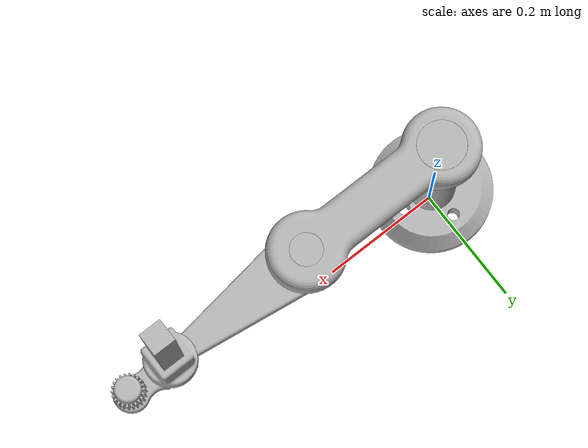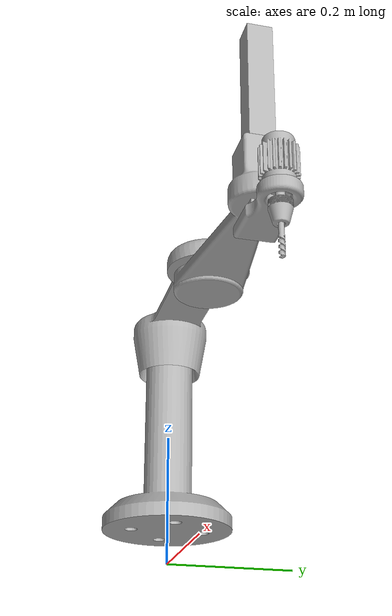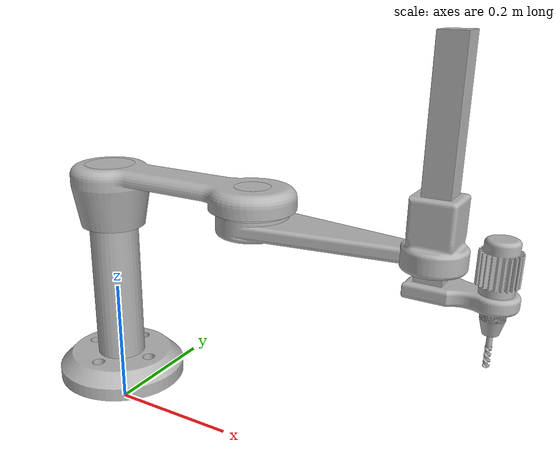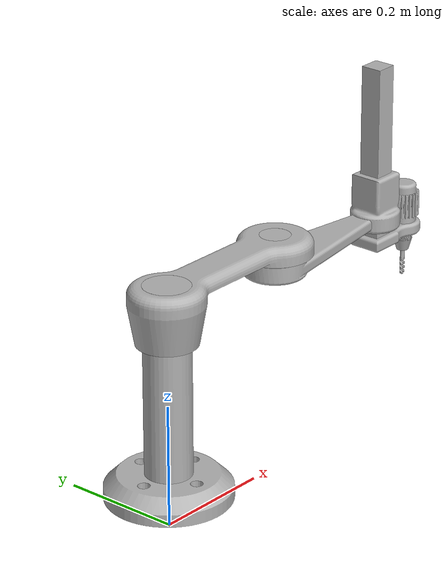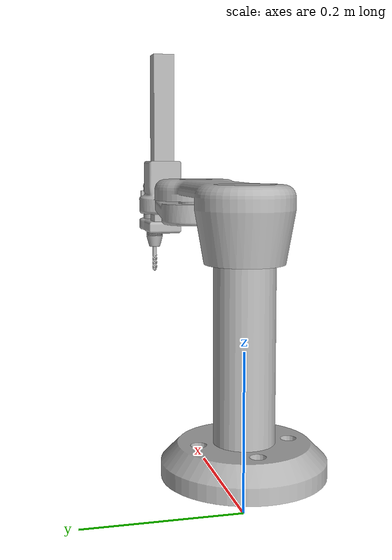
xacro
<?xml version="1.0" ?>
<robot name="scara" xmlns:xacro="http://www.ros.org/wiki/xacro">

<xacro:include filename="$(find scara_description)/urdf/materials.xacro" />
<xacro:include filename="$(find scara_description)/urdf/scara.trans" />

<xacro:include filename="$(find scara_description)/urdf/gazebo/scara_plugins.gazebo" />
<xacro:include filename="$(find scara_description)/urdf/gazebo/scara_materials.gazebo" />
<xacro:include filename="$(find scara_description)/urdf/gazebo/scara_physics.gazebo" />

<link name="world"/>
  <joint name="base_joint" type="fixed">
    <parent link="world"/>
    <child link="base_link"/>
    <origin rpy="0 0 0" xyz="0.0 0.0 0.05"/>
  </joint>

<link name="base_link">
  <inertial>
    <origin xyz="0.0 0.0 0.11685065885797952" rpy="0 0 0"/>
    <mass value="19.300194480249786"/>
    <inertia ixx="0.259153" iyy="0.259153" izz="0.047533" ixy="0.0" iyz="0.0" ixz="0.0"/>
  </inertial>
  <visual>
    <origin xyz="0 0 0" rpy="0 0 0"/>
    <geometry>
      <mesh filename="package://scara_description/meshes/base_link.stl" scale="0.001 0.001 0.001"/>
    </geometry>
    <material name="silver"/>
  </visual>
  <collision>
    <origin xyz="0 0 0" rpy="0 0 0"/>
    <geometry>
      <mesh filename="package://scara_description/meshes/base_link.stl" scale="0.001 0.001 0.001"/>
    </geometry>
  </collision>
</link>

<link name="shoulder_link_1">
  <inertial>
    <origin xyz="0.10406729162358057 -1.3891110484109959e-14 -0.023501440517303518" rpy="0 0 0"/>
    <mass value="6.854555767942093"/>
    <inertia ixx="0.009222" iyy="0.090745" izz="0.094968" ixy="-0.0" iyz="-0.0" ixz="-0.006604"/>
  </inertial>
  <visual>
    <origin xyz="-0.0 -0.0 -0.35" rpy="0 0 0"/>
    <geometry>
      <mesh filename="package://scara_description/meshes/shoulder_link_1.stl" scale="0.001 0.001 0.001"/>
    </geometry>
    <material name="silver"/>
  </visual>
  <collision>
    <origin xyz="-0.0 -0.0 -0.35" rpy="0 0 0"/>
    <geometry>
      <mesh filename="package://scara_description/meshes/shoulder_link_1.stl" scale="0.001 0.001 0.001"/>
    </geometry>
  </collision>
</link>

<link name="elbow_link_1">
  <inertial>
    <origin xyz="0.10981624616210922 -6.3228217328514805e-09 -0.04001457655872265" rpy="0 0 0"/>
    <mass value="5.874767873320114"/>
    <inertia ixx="0.005118" iyy="0.072285" izz="0.07261" ixy="-0.0" iyz="-0.0" ixz="-0.00379"/>
  </inertial>
  <visual>
    <origin xyz="-0.25 -0.0 -0.35" rpy="0 0 0"/>
    <geometry>
      <mesh filename="package://scara_description/meshes/elbow_link_1.stl" scale="0.001 0.001 0.001"/>
    </geometry>
    <material name="silver"/>
  </visual>
  <collision>
    <origin xyz="-0.25 -0.0 -0.35" rpy="0 0 0"/>
    <geometry>
      <mesh filename="package://scara_description/meshes/elbow_link_1.stl" scale="0.001 0.001 0.001"/>
    </geometry>
  </collision>
</link>

<link name="wrist_link_1">
  <inertial>
    <origin xyz="-0.2750000000000256 0.16722200000002807 -0.17975880198197997" rpy="0 0 0"/>
    <mass value="2.8802120999999996"/>
    <inertia ixx="0.021827" iyy="0.021827" izz="0.000587" ixy="-0.0" iyz="0.0" ixz="0.0"/>
  </inertial>
  <visual>
    <origin xyz="-0.775 0.167222 -0.585" rpy="0 0 0"/>
    <geometry>
      <mesh filename="package://scara_description/meshes/wrist_link_1.stl" scale="0.001 0.001 0.001"/>
    </geometry>
    <material name="silver"/>
  </visual>
  <collision>
    <origin xyz="-0.775 0.167222 -0.585" rpy="0 0 0"/>
    <geometry>
      <mesh filename="package://scara_description/meshes/wrist_link_1.stl" scale="0.001 0.001 0.001"/>
    </geometry>
  </collision>
</link>

<link name="ee_link_1">
  <inertial>
    <origin xyz="0.03355560765510779 6.631408897561641e-08 0.00599099555139021" rpy="0 0 0"/>
    <mass value="0.6787662605990178"/>
    <inertia ixx="0.000199" iyy="0.000901" izz="0.001057" ixy="-0.0" iyz="0.0" ixz="-4e-06"/>
  </inertial>
  <visual>
    <origin xyz="-0.5 -0.0 -0.255" rpy="0 0 0"/>
    <geometry>
      <mesh filename="package://scara_description/meshes/ee_link_1.stl" scale="0.001 0.001 0.001"/>
    </geometry>
    <material name="silver"/>
  </visual>
  <collision>
    <origin xyz="-0.5 -0.0 -0.255" rpy="0 0 0"/>
    <geometry>
      <mesh filename="package://scara_description/meshes/ee_link_1.stl" scale="0.001 0.001 0.001"/>
    </geometry>
  </collision>
</link>

<link name="motor_link_1">
  <inertial>
    <origin xyz="-1.6228999255574195e-09 2.0707811870579462e-07 0.03391798119409134" rpy="0 0 0"/>
    <mass value="0.8066266647615069"/>
    <inertia ixx="0.000415" iyy="0.000415" izz="0.000189" ixy="-0.0" iyz="-0.0" ixz="0.0"/>
  </inertial>
  <visual>
    <origin xyz="-0.575 -0.0 -0.266576" rpy="0 0 0"/>
    <geometry>
      <mesh filename="package://scara_description/meshes/motor_link_1.stl" scale="0.001 0.001 0.001"/>
    </geometry>
    <material name="silver"/>
  </visual>
  <collision>
    <origin xyz="-0.575 -0.0 -0.266576" rpy="0 0 0"/>
    <geometry>
      <mesh filename="package://scara_description/meshes/motor_link_1.stl" scale="0.001 0.001 0.001"/>
    </geometry>
  </collision>
</link>

<link name="chuck_link_1">
  <inertial>
    <origin xyz="1.683823280806962e-08 -2.2235286252225704e-08 -0.011382325189040837" rpy="0 0 0"/>
    <mass value="0.12296942924536237"/>
    <inertia ixx="1.4e-05" iyy="1.4e-05" izz="1.2e-05" ixy="0.0" iyz="0.0" ixz="-0.0"/>
  </inertial>
  <visual>
    <origin xyz="-0.575 -0.0 -0.248576" rpy="0 0 0"/>
    <geometry>
      <mesh filename="package://scara_description/meshes/chuck_link_1.stl" scale="0.001 0.001 0.001"/>
    </geometry>
    <material name="silver"/>
  </visual>
  <collision>
    <origin xyz="-0.575 -0.0 -0.248576" rpy="0 0 0"/>
    <geometry>
      <mesh filename="package://scara_description/meshes/chuck_link_1.stl" scale="0.001 0.001 0.001"/>
    </geometry>
  </collision>
</link>

<link name="drill_link_1">
  <inertial>
    <origin xyz="1.2688239348079833e-10 2.089224615531293e-09 -0.025049374497440463" rpy="0 0 0"/>
    <mass value="0.014560180214849353"/>
    <inertia ixx="3e-06" iyy="3e-06" izz="0.0" ixy="0.0" iyz="0.0" ixz="0.0"/>
  </inertial>
  <visual>
    <origin xyz="-0.575 -0.0 -0.229576" rpy="0 0 0"/>
    <geometry>
      <mesh filename="package://scara_description/meshes/drill_link_1.stl" scale="0.001 0.001 0.001"/>
    </geometry>
    <material name="silver"/>
  </visual>
  <collision>
    <origin xyz="-0.575 -0.0 -0.229576" rpy="0 0 0"/>
    <geometry>
      <mesh filename="package://scara_description/meshes/drill_link_1.stl" scale="0.001 0.001 0.001"/>
    </geometry>
  </collision>
</link>

<joint name="shoulder_joint" type="revolute">
  <origin xyz="0.0 0.0 0.35" rpy="0 0 0"/>
  <parent link="base_link"/>
  <child link="shoulder_link_1"/>
  <axis xyz="0.0 0.0 1.0"/>
  <limit upper="6.283185" lower="0.0" effort="100" velocity="1.0"/>
</joint>

<joint name="elbow_joint" type="revolute">
  <origin xyz="0.25 0.0 0.0" rpy="0 0 0"/>
  <parent link="shoulder_link_1"/>
  <child link="elbow_link_1"/>
  <axis xyz="0.0 0.0 1.0"/>
  <limit upper="2.70526" lower="-2.70526" effort="100" velocity="1.0"/>
</joint>

<joint name="wrist_joint" type="prismatic">
  <origin xyz="0.525 -0.167222 0.235" rpy="0 0 0"/>
  <parent link="elbow_link_1"/>
  <child link="wrist_link_1"/>
  <axis xyz="-0.0 0.0 -1.0"/>
  <dynamics damping="10.0" friction="44.0"/>
  <limit upper="0.18" lower="0" effort="1000" velocity="0.05"/>
</joint>

<joint name="Rigid 19" type="fixed">
  <origin xyz="-0.275 0.167222 -0.33" rpy="0 0 0"/>
  <parent link="wrist_link_1"/>
  <child link="ee_link_1"/>
</joint>

<joint name="motor_joint" type="fixed">
  <origin xyz="0.075 0.0 0.011576" rpy="0 0 0"/>
  <parent link="ee_link_1"/>
  <child link="motor_link_1"/>
</joint>

<joint name="chuck_joint" type="continuous">
  <origin xyz="0.0 0.0 -0.018" rpy="0 0 0"/>
  <parent link="motor_link_1"/>
  <child link="chuck_link_1"/>
  <axis xyz="-0.0 0.0 -1.0"/>
  <limit upper="6.283185" lower="0.0" effort="100" velocity="100"/>
</joint>

<joint name="drill_joint" type="fixed">
  <origin xyz="0.0 0.0 -0.019" rpy="0 0 0"/>
  <parent link="chuck_link_1"/>
  <child link="drill_link_1"/>
</joint>

</robot>

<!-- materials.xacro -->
<robot name="scara" xmlns:xacro="http://www.ros.org/wiki/xacro" >

<material name="silver">
  <color rgba="0.700 0.700 0.700 1.000"/>
</material>

</robot>

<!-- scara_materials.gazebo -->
<robot name="scara" xmlns:xacro="http://www.ros.org/wiki/xacro" >

<xacro:property name="body_color" value="Gazebo/Silver" />
<xacro:property name="red_color" value="Gazebo/Red" />
<xacro:property name="yellow_color" value="Gazebo/Yellow" />
<xacro:property name="grey_color" value="Gazebo/DarkGrey" />

<gazebo reference="base_link">
  <material>${red_color}</material>
</gazebo>

<gazebo reference="shoulder_link_1">
  <material>${grey_color}</material>
</gazebo>

<gazebo reference="elbow_link_1">
  <material>${red_color}</material>
</gazebo>

<gazebo reference="wrist_link_1">
  <material>${grey_color}</material>
</gazebo>

<gazebo reference="ee_link_1">
  <material>${grey_color}</material>
</gazebo>

<gazebo reference="motor_link_1">
  <material>${yellow_color}</material>
</gazebo>

<gazebo reference="chuck_link_1">
  <material>${body_color}</material>
</gazebo>

<gazebo reference="drill_link_1">
  <material>${grey_color}</material>
</gazebo>

</robot>
